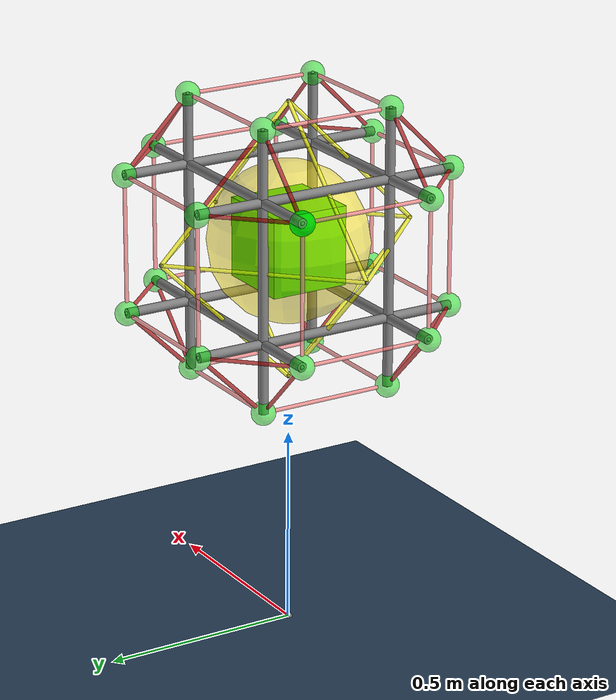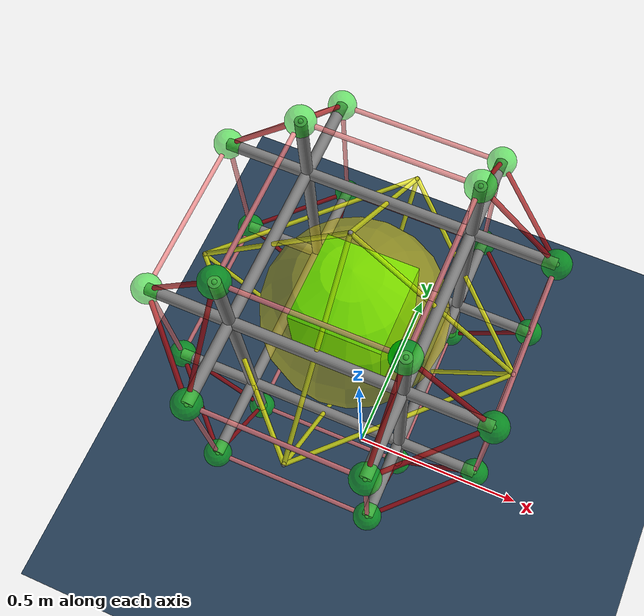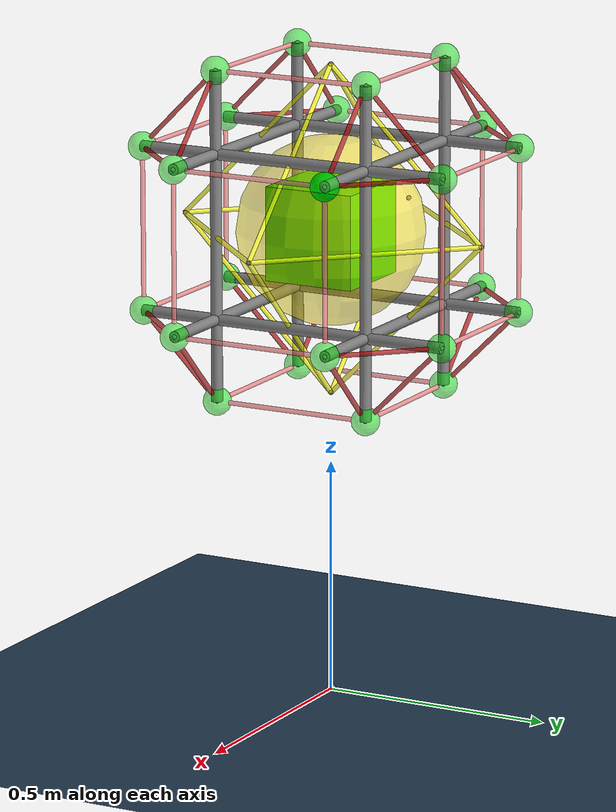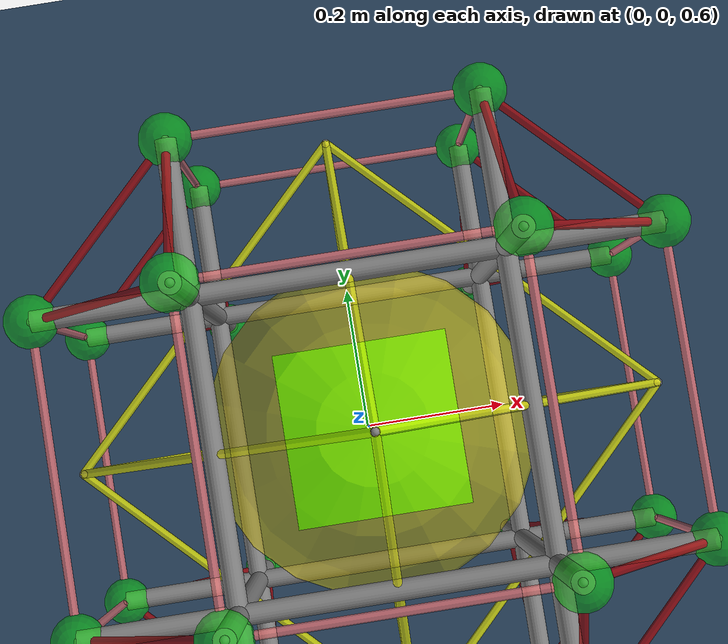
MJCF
<?xml version='1.0' encoding='utf-8'?>
<mujoco model="TT12_environment">
  <compiler autolimits="true" coordinate="local" angle="degree" inertiafromgeom="true" />
  <option timestep="1.0000000000000001e-05" gravity="0 0 -10" integrator="Euler">
    <flag override="disable" energy="enable" />
  </option>
  <visual>
    <headlight ambient="0.59999999999999998 0.59999999999999998 0.59999999999999998" diffuse="0.29999999999999999 0.29999999999999999 0.29999999999999999" specular="0.10000000000000001 0.10000000000000001 0.10000000000000001" />
  </visual>
  <default>
    <default class="/">
      <joint type="hinge" damping="0" />
      <geom type="capsule" />
      <site type="sphere" size="0.01" />
      <tendon limited="true" range="0 10" width="0.0050000000000000001" rgba="1 0 0 1" damping="10" />
    </default>
    <default class="tt_model_0/">
      <tendon limited="true" range="0 10" width="0.0050000000000000001" rgba="1 0 0 1" damping="10" />
    </default>
    <default class="tt_model_0/rod0_1/" />
    <default class="tt_model_0/rod2_3/" />
    <default class="tt_model_0/rod4_5/" />
    <default class="tt_model_0/rod6_7/" />
    <default class="tt_model_0/rod8_9/" />
    <default class="tt_model_0/rod10_11/" />
    <default class="tt_model_0/rod12_13/" />
    <default class="tt_model_0/rod14_15/" />
    <default class="tt_model_0/rod16_17/" />
    <default class="tt_model_0/rod18_19/" />
    <default class="tt_model_0/rod20_21/" />
    <default class="tt_model_0/rod22_23/" />
    <default class="tt_model_0/middle_platform/" />
  </default>
  <asset>
    <texture name="skybox" type="skybox" builtin="gradient" rgb1="0.29999999999999999 0.5 0.69999999999999996" rgb2="0 0 0" width="512" height="3072" />
    <texture name="2d" type="2d" builtin="checker" rgb1="0.20000000000000001 0.29999999999999999 0.40000000000000002" rgb2="0.10000000000000001 0.20000000000000001 0.29999999999999999" width="300" height="300" />
    <material name="grid" class="/" texture="2d" texrepeat="5 5" reflectance="0.20000000000000001" />
  </asset>
  <worldbody>
    <geom name="floor" class="/" type="plane" condim="6" priority="1" size="0 0 0.125" material="grid" friction="0.5 0.1 0.1" solref="-5773.1000000000004 -68.760000000000005" solimp="0.26900000000000002 0.070999999999999994 0.065000000000000002 0.5 2" pos="0 0 0" />
    <light name="light_-2" class="/" pos="-2 -1 3" dir="2 1 -2" />
    <light name="light_2" class="/" pos="2 -1 3" dir="-2 1 -2" />
    <site name="world_site" class="/" pos="0 0 0" />
    <site name="tt_model_0/middle_site_0_1" class="tt_model_0/" rgba="0 0 0 0" pos="0.17499999999999999 0.17499999999999999 1" />
    <body pos="0.17499999999999999 0.17499999999999999 1" name="tt_model_0/rod0_1/">
      <freejoint name="tt_model_0/rod0_1/" />
      <geom name="tt_model_0/rod0_1/geom0_1" class="tt_model_0/rod0_1/" type="cylinder" size="0.012" mass="0.022499999999999999" fromto="0 0 0.35000000000000009 0 0 -0.34999999999999998" />
      <site name="tt_model_0/rod0_1/node_0" class="tt_model_0/rod0_1/" pos="0 0 0.35000000000000009" />
      <site name="tt_model_0/rod0_1/node_1" class="tt_model_0/rod0_1/" pos="0 0 -0.34999999999999998" />
      <site name="tt_model_0/rod0_1/node_24" class="tt_model_0/rod0_1/" pos="0 0 0" />
      <geom name="tt_model_0/rod0_1/geom_edge_0" class="tt_model_0/rod0_1/" type="sphere" condim="6" size="0.029999999999999999" rgba="0 0.90000000000000002 0 0.5" mass="0.011299999999999999" pos="0 0 0.35000000000000009" />
      <geom name="tt_model_0/rod0_1/geom_edge_1" class="tt_model_0/rod0_1/" type="sphere" condim="6" size="0.029999999999999999" rgba="0 0.90000000000000002 0 0.5" mass="0.011299999999999999" pos="0 0 -0.34999999999999998" />
    </body>
    <site name="tt_model_0/middle_site_2_3" class="tt_model_0/" rgba="0 0 0 0" pos="-0.17499999999999999 0.17499999999999999 1" />
    <body pos="-0.17499999999999999 0.17499999999999999 1" name="tt_model_0/rod2_3/">
      <freejoint name="tt_model_0/rod2_3/" />
      <geom name="tt_model_0/rod2_3/geom2_3" class="tt_model_0/rod2_3/" type="cylinder" size="0.012" mass="0.022499999999999999" fromto="0 0 0.35000000000000009 0 0 -0.34999999999999998" />
      <site name="tt_model_0/rod2_3/node_2" class="tt_model_0/rod2_3/" pos="0 0 0.35000000000000009" />
      <site name="tt_model_0/rod2_3/node_3" class="tt_model_0/rod2_3/" pos="0 0 -0.34999999999999998" />
      <site name="tt_model_0/rod2_3/node_25" class="tt_model_0/rod2_3/" pos="0 0 0" />
      <geom name="tt_model_0/rod2_3/geom_edge_2" class="tt_model_0/rod2_3/" type="sphere" condim="6" size="0.029999999999999999" rgba="0 0.90000000000000002 0 0.5" mass="0.011299999999999999" pos="0 0 0.35000000000000009" />
      <geom name="tt_model_0/rod2_3/geom_edge_3" class="tt_model_0/rod2_3/" type="sphere" condim="6" size="0.029999999999999999" rgba="0 0.90000000000000002 0 0.5" mass="0.011299999999999999" pos="0 0 -0.34999999999999998" />
    </body>
    <site name="tt_model_0/middle_site_4_5" class="tt_model_0/" rgba="0 0 0 0" pos="-0.17499999999999999 -0.17499999999999999 1" />
    <body pos="-0.17499999999999999 -0.17499999999999999 1" name="tt_model_0/rod4_5/">
      <freejoint name="tt_model_0/rod4_5/" />
      <geom name="tt_model_0/rod4_5/geom4_5" class="tt_model_0/rod4_5/" type="cylinder" size="0.012" mass="0.022499999999999999" fromto="0 0 0.35000000000000009 0 0 -0.34999999999999998" />
      <site name="tt_model_0/rod4_5/node_4" class="tt_model_0/rod4_5/" pos="0 0 0.35000000000000009" />
      <site name="tt_model_0/rod4_5/node_5" class="tt_model_0/rod4_5/" pos="0 0 -0.34999999999999998" />
      <site name="tt_model_0/rod4_5/node_26" class="tt_model_0/rod4_5/" pos="0 0 0" />
      <geom name="tt_model_0/rod4_5/geom_edge_4" class="tt_model_0/rod4_5/" type="sphere" condim="6" size="0.029999999999999999" rgba="0 0.90000000000000002 0 0.5" mass="0.011299999999999999" pos="0 0 0.35000000000000009" />
      <geom name="tt_model_0/rod4_5/geom_edge_5" class="tt_model_0/rod4_5/" type="sphere" condim="6" size="0.029999999999999999" rgba="0 0.90000000000000002 0 0.5" mass="0.011299999999999999" pos="0 0 -0.34999999999999998" />
    </body>
    <site name="tt_model_0/middle_site_6_7" class="tt_model_0/" rgba="0 0 0 0" pos="0.17499999999999999 -0.17499999999999999 1" />
    <body pos="0.17499999999999999 -0.17499999999999999 1" name="tt_model_0/rod6_7/">
      <freejoint name="tt_model_0/rod6_7/" />
      <geom name="tt_model_0/rod6_7/geom6_7" class="tt_model_0/rod6_7/" type="cylinder" size="0.012" mass="0.022499999999999999" fromto="0 0 0.35000000000000009 0 0 -0.34999999999999998" />
      <site name="tt_model_0/rod6_7/node_6" class="tt_model_0/rod6_7/" pos="0 0 0.35000000000000009" />
      <site name="tt_model_0/rod6_7/node_7" class="tt_model_0/rod6_7/" pos="0 0 -0.34999999999999998" />
      <site name="tt_model_0/rod6_7/node_27" class="tt_model_0/rod6_7/" pos="0 0 0" />
      <geom name="tt_model_0/rod6_7/geom_edge_6" class="tt_model_0/rod6_7/" type="sphere" condim="6" size="0.029999999999999999" rgba="0 0.90000000000000002 0 0.5" mass="0.011299999999999999" pos="0 0 0.35000000000000009" />
      <geom name="tt_model_0/rod6_7/geom_edge_7" class="tt_model_0/rod6_7/" type="sphere" condim="6" size="0.029999999999999999" rgba="0 0.90000000000000002 0 0.5" mass="0.011299999999999999" pos="0 0 -0.34999999999999998" />
    </body>
    <site name="tt_model_0/middle_site_8_9" class="tt_model_0/" rgba="0 0 0 0" pos="0.17499999999999999 0 1.175" />
    <body pos="0.17499999999999999 0 1.175" name="tt_model_0/rod8_9/">
      <freejoint name="tt_model_0/rod8_9/" />
      <geom name="tt_model_0/rod8_9/geom8_9" class="tt_model_0/rod8_9/" type="cylinder" size="0.012" mass="0.022499999999999999" fromto="0 0.34999999999999998 0 0 -0.34999999999999998 0" />
      <site name="tt_model_0/rod8_9/node_8" class="tt_model_0/rod8_9/" pos="0 0.34999999999999998 0" />
      <site name="tt_model_0/rod8_9/node_9" class="tt_model_0/rod8_9/" pos="0 -0.34999999999999998 0" />
      <site name="tt_model_0/rod8_9/node_28" class="tt_model_0/rod8_9/" pos="0 0 0" />
      <geom name="tt_model_0/rod8_9/geom_edge_8" class="tt_model_0/rod8_9/" type="sphere" condim="6" size="0.029999999999999999" rgba="0 0.90000000000000002 0 0.5" mass="0.011299999999999999" pos="0 0.34999999999999998 0" />
      <geom name="tt_model_0/rod8_9/geom_edge_9" class="tt_model_0/rod8_9/" type="sphere" condim="6" size="0.029999999999999999" rgba="0 0.90000000000000002 0 0.5" mass="0.011299999999999999" pos="0 -0.34999999999999998 0" />
    </body>
    <site name="tt_model_0/middle_site_10_11" class="tt_model_0/" rgba="0 0 0 0" pos="0.17499999999999999 0 0.82499999999999996" />
    <body pos="0.17499999999999999 0 0.82499999999999996" name="tt_model_0/rod10_11/">
      <freejoint name="tt_model_0/rod10_11/" />
      <geom name="tt_model_0/rod10_11/geom10_11" class="tt_model_0/rod10_11/" type="cylinder" size="0.012" mass="0.022499999999999999" fromto="0 0.34999999999999998 0 0 -0.34999999999999998 0" />
      <site name="tt_model_0/rod10_11/node_10" class="tt_model_0/rod10_11/" pos="0 0.34999999999999998 0" />
      <site name="tt_model_0/rod10_11/node_11" class="tt_model_0/rod10_11/" pos="0 -0.34999999999999998 0" />
      <site name="tt_model_0/rod10_11/node_29" class="tt_model_0/rod10_11/" pos="0 0 0" />
      <geom name="tt_model_0/rod10_11/geom_edge_10" class="tt_model_0/rod10_11/" type="sphere" condim="6" size="0.029999999999999999" rgba="0 0.90000000000000002 0 0.5" mass="0.011299999999999999" pos="0 0.34999999999999998 0" />
      <geom name="tt_model_0/rod10_11/geom_edge_11" class="tt_model_0/rod10_11/" type="sphere" condim="6" size="0.029999999999999999" rgba="0 0.90000000000000002 0 0.5" mass="0.011299999999999999" pos="0 -0.34999999999999998 0" />
    </body>
    <site name="tt_model_0/middle_site_12_13" class="tt_model_0/" rgba="0 0 0 0" pos="-0.17499999999999999 0 0.82499999999999996" />
    <body pos="-0.17499999999999999 0 0.82499999999999996" name="tt_model_0/rod12_13/">
      <freejoint name="tt_model_0/rod12_13/" />
      <geom name="tt_model_0/rod12_13/geom12_13" class="tt_model_0/rod12_13/" type="cylinder" size="0.012" mass="0.022499999999999999" fromto="0 0.34999999999999998 0 0 -0.34999999999999998 0" />
      <site name="tt_model_0/rod12_13/node_12" class="tt_model_0/rod12_13/" pos="0 0.34999999999999998 0" />
      <site name="tt_model_0/rod12_13/node_13" class="tt_model_0/rod12_13/" pos="0 -0.34999999999999998 0" />
      <site name="tt_model_0/rod12_13/node_30" class="tt_model_0/rod12_13/" pos="0 0 0" />
      <geom name="tt_model_0/rod12_13/geom_edge_12" class="tt_model_0/rod12_13/" type="sphere" condim="6" size="0.029999999999999999" rgba="0 0.90000000000000002 0 0.5" mass="0.011299999999999999" pos="0 0.34999999999999998 0" />
      <geom name="tt_model_0/rod12_13/geom_edge_13" class="tt_model_0/rod12_13/" type="sphere" condim="6" size="0.029999999999999999" rgba="0 0.90000000000000002 0 0.5" mass="0.011299999999999999" pos="0 -0.34999999999999998 0" />
    </body>
    <site name="tt_model_0/middle_site_14_15" class="tt_model_0/" rgba="0 0 0 0" pos="-0.17499999999999999 0 1.175" />
    <body pos="-0.17499999999999999 0 1.175" name="tt_model_0/rod14_15/">
      <freejoint name="tt_model_0/rod14_15/" />
      <geom name="tt_model_0/rod14_15/geom14_15" class="tt_model_0/rod14_15/" type="cylinder" size="0.012" mass="0.022499999999999999" fromto="0 0.34999999999999998 0 0 -0.34999999999999998 0" />
      <site name="tt_model_0/rod14_15/node_14" class="tt_model_0/rod14_15/" pos="0 0.34999999999999998 0" />
      <site name="tt_model_0/rod14_15/node_15" class="tt_model_0/rod14_15/" pos="0 -0.34999999999999998 0" />
      <site name="tt_model_0/rod14_15/node_31" class="tt_model_0/rod14_15/" pos="0 0 0" />
      <geom name="tt_model_0/rod14_15/geom_edge_14" class="tt_model_0/rod14_15/" type="sphere" condim="6" size="0.029999999999999999" rgba="0 0.90000000000000002 0 0.5" mass="0.011299999999999999" pos="0 0.34999999999999998 0" />
      <geom name="tt_model_0/rod14_15/geom_edge_15" class="tt_model_0/rod14_15/" type="sphere" condim="6" size="0.029999999999999999" rgba="0 0.90000000000000002 0 0.5" mass="0.011299999999999999" pos="0 -0.34999999999999998 0" />
    </body>
    <site name="tt_model_0/middle_site_16_17" class="tt_model_0/" rgba="0 0 0 0" pos="0 0.17499999999999999 1.175" />
    <body pos="0 0.17499999999999999 1.175" name="tt_model_0/rod16_17/">
      <freejoint name="tt_model_0/rod16_17/" />
      <geom name="tt_model_0/rod16_17/geom16_17" class="tt_model_0/rod16_17/" type="cylinder" size="0.012" mass="0.022499999999999999" fromto="0.34999999999999998 0 0 -0.34999999999999998 0 0" />
      <site name="tt_model_0/rod16_17/node_16" class="tt_model_0/rod16_17/" pos="0.34999999999999998 0 0" />
      <site name="tt_model_0/rod16_17/node_17" class="tt_model_0/rod16_17/" pos="-0.34999999999999998 0 0" />
      <site name="tt_model_0/rod16_17/node_32" class="tt_model_0/rod16_17/" pos="0 0 0" />
      <geom name="tt_model_0/rod16_17/geom_edge_16" class="tt_model_0/rod16_17/" type="sphere" condim="6" size="0.029999999999999999" rgba="0 0.90000000000000002 0 0.5" mass="0.011299999999999999" pos="0.34999999999999998 0 0" />
      <geom name="tt_model_0/rod16_17/geom_edge_17" class="tt_model_0/rod16_17/" type="sphere" condim="6" size="0.029999999999999999" rgba="0 0.90000000000000002 0 0.5" mass="0.011299999999999999" pos="-0.34999999999999998 0 0" />
    </body>
    <site name="tt_model_0/middle_site_18_19" class="tt_model_0/" rgba="0 0 0 0" pos="0 -0.17499999999999999 1.175" />
    <body pos="0 -0.17499999999999999 1.175" name="tt_model_0/rod18_19/">
      <freejoint name="tt_model_0/rod18_19/" />
      <geom name="tt_model_0/rod18_19/geom18_19" class="tt_model_0/rod18_19/" type="cylinder" size="0.012" mass="0.022499999999999999" fromto="0.34999999999999998 0 0 -0.34999999999999998 0 0" />
      <site name="tt_model_0/rod18_19/node_18" class="tt_model_0/rod18_19/" pos="0.34999999999999998 0 0" />
      <site name="tt_model_0/rod18_19/node_19" class="tt_model_0/rod18_19/" pos="-0.34999999999999998 0 0" />
      <site name="tt_model_0/rod18_19/node_33" class="tt_model_0/rod18_19/" pos="0 0 0" />
      <geom name="tt_model_0/rod18_19/geom_edge_18" class="tt_model_0/rod18_19/" type="sphere" condim="6" size="0.029999999999999999" rgba="0 0.90000000000000002 0 0.5" mass="0.011299999999999999" pos="0.34999999999999998 0 0" />
      <geom name="tt_model_0/rod18_19/geom_edge_19" class="tt_model_0/rod18_19/" type="sphere" condim="6" size="0.029999999999999999" rgba="0 0.90000000000000002 0 0.5" mass="0.011299999999999999" pos="-0.34999999999999998 0 0" />
    </body>
    <site name="tt_model_0/middle_site_20_21" class="tt_model_0/" rgba="0 0 0 0" pos="0 -0.17499999999999999 0.82499999999999996" />
    <body pos="0 -0.17499999999999999 0.82499999999999996" name="tt_model_0/rod20_21/">
      <freejoint name="tt_model_0/rod20_21/" />
      <geom name="tt_model_0/rod20_21/geom20_21" class="tt_model_0/rod20_21/" type="cylinder" size="0.012" mass="0.022499999999999999" fromto="0.34999999999999998 0 0 -0.34999999999999998 0 0" />
      <site name="tt_model_0/rod20_21/node_20" class="tt_model_0/rod20_21/" pos="0.34999999999999998 0 0" />
      <site name="tt_model_0/rod20_21/node_21" class="tt_model_0/rod20_21/" pos="-0.34999999999999998 0 0" />
      <site name="tt_model_0/rod20_21/node_34" class="tt_model_0/rod20_21/" pos="0 0 0" />
      <geom name="tt_model_0/rod20_21/geom_edge_20" class="tt_model_0/rod20_21/" type="sphere" condim="6" size="0.029999999999999999" rgba="0 0.90000000000000002 0 0.5" mass="0.011299999999999999" pos="0.34999999999999998 0 0" />
      <geom name="tt_model_0/rod20_21/geom_edge_21" class="tt_model_0/rod20_21/" type="sphere" condim="6" size="0.029999999999999999" rgba="0 0.90000000000000002 0 0.5" mass="0.011299999999999999" pos="-0.34999999999999998 0 0" />
    </body>
    <site name="tt_model_0/middle_site_22_23" class="tt_model_0/" rgba="0 0 0 0" pos="0 0.17499999999999999 0.82499999999999996" />
    <body pos="0 0.17499999999999999 0.82499999999999996" name="tt_model_0/rod22_23/">
      <freejoint name="tt_model_0/rod22_23/" />
      <geom name="tt_model_0/rod22_23/geom22_23" class="tt_model_0/rod22_23/" type="cylinder" size="0.012" mass="0.022499999999999999" fromto="0.34999999999999998 0 0 -0.34999999999999998 0 0" />
      <site name="tt_model_0/rod22_23/node_22" class="tt_model_0/rod22_23/" pos="0.34999999999999998 0 0" />
      <site name="tt_model_0/rod22_23/node_23" class="tt_model_0/rod22_23/" pos="-0.34999999999999998 0 0" />
      <site name="tt_model_0/rod22_23/node_35" class="tt_model_0/rod22_23/" pos="0 0 0" />
      <geom name="tt_model_0/rod22_23/geom_edge_22" class="tt_model_0/rod22_23/" type="sphere" condim="6" size="0.029999999999999999" rgba="0 0.90000000000000002 0 0.5" mass="0.011299999999999999" pos="0.34999999999999998 0 0" />
      <geom name="tt_model_0/rod22_23/geom_edge_23" class="tt_model_0/rod22_23/" type="sphere" condim="6" size="0.029999999999999999" rgba="0 0.90000000000000002 0 0.5" mass="0.011299999999999999" pos="-0.34999999999999998 0 0" />
    </body>
    <site name="tt_model_0/middle_element_site" class="tt_model_0/" rgba="0 0 0 0" pos="0 0 1" />
    <body pos="0 0 1" name="tt_model_0/middle_platform/">
      <freejoint name="tt_model_0/middle_platform/" />
      <inertial pos="0 0 0" mass="0.69999999999999996" diaginertia="0.02 0.02 0.02" />
      <site name="tt_model_0/middle_platform/node_39" class="tt_model_0/middle_platform/" pos="0 0.34999999999999998 0" />
      <site name="tt_model_0/middle_platform/node_38" class="tt_model_0/middle_platform/" pos="-0.34999999999999998 0 0" />
      <site name="tt_model_0/middle_platform/node_40" class="tt_model_0/middle_platform/" pos="0 -0.34999999999999998 0" />
      <site name="tt_model_0/middle_platform/node_41" class="tt_model_0/middle_platform/" pos="0 0 0.35000000000000009" />
      <site name="tt_model_0/middle_platform/node_37" class="tt_model_0/middle_platform/" pos="0.34999999999999998 0 0" />
      <site name="tt_model_0/middle_platform/node_42" class="tt_model_0/middle_platform/" pos="0 0 -0.34999999999999998" />
      <site name="tt_model_0/middle_platform/outside_site" class="tt_model_0/middle_platform/" rgba="1 0.90000000000000002 0 0.5" size="0.20000000000000001" pos="0 0 0" />
      <body name="tt_model_0/middle_platform/inside_ball" pos="0 0 0">
        <inertial pos="0 0 0" mass="6.5999999999999996" diaginertia="0.12 0.12 0.12" />
        <joint name="tt_model_0/middle_platform/x_control" class="tt_model_0/middle_platform/" type="hinge" axis="1 0 0" />
        <joint name="tt_model_0/middle_platform/y_control" class="tt_model_0/middle_platform/" type="hinge" axis="0 1 0" />
        <joint name="tt_model_0/middle_platform/z_control" class="tt_model_0/middle_platform/" type="hinge" axis="0 0 1" />
        <site name="tt_model_0/middle_platform/inside_site" class="tt_model_0/middle_platform/" type="box" rgba="0 0.90000000000000002 0 1" size="0.10000000000000001 0.10000000000000001 0.10000000000000001" pos="0 0 0" />
      </body>
    </body>
  </worldbody>
  <contact>
    <exclude name="tt_model_0/exclude_rod0_1_rod2_3" body1="tt_model_0/rod0_1/" body2="tt_model_0/rod2_3/" />
    <exclude name="tt_model_0/exclude_rod0_1_rod4_5" body1="tt_model_0/rod0_1/" body2="tt_model_0/rod4_5/" />
    <exclude name="tt_model_0/exclude_rod0_1_rod6_7" body1="tt_model_0/rod0_1/" body2="tt_model_0/rod6_7/" />
    <exclude name="tt_model_0/exclude_rod0_1_rod8_9" body1="tt_model_0/rod0_1/" body2="tt_model_0/rod8_9/" />
    <exclude name="tt_model_0/exclude_rod0_1_rod10_11" body1="tt_model_0/rod0_1/" body2="tt_model_0/rod10_11/" />
    <exclude name="tt_model_0/exclude_rod0_1_rod12_13" body1="tt_model_0/rod0_1/" body2="tt_model_0/rod12_13/" />
    <exclude name="tt_model_0/exclude_rod0_1_rod14_15" body1="tt_model_0/rod0_1/" body2="tt_model_0/rod14_15/" />
    <exclude name="tt_model_0/exclude_rod0_1_rod16_17" body1="tt_model_0/rod0_1/" body2="tt_model_0/rod16_17/" />
    <exclude name="tt_model_0/exclude_rod0_1_rod18_19" body1="tt_model_0/rod0_1/" body2="tt_model_0/rod18_19/" />
    <exclude name="tt_model_0/exclude_rod0_1_rod20_21" body1="tt_model_0/rod0_1/" body2="tt_model_0/rod20_21/" />
    <exclude name="tt_model_0/exclude_rod0_1_rod22_23" body1="tt_model_0/rod0_1/" body2="tt_model_0/rod22_23/" />
    <exclude name="tt_model_0/exclude_rod2_3_rod4_5" body1="tt_model_0/rod2_3/" body2="tt_model_0/rod4_5/" />
    <exclude name="tt_model_0/exclude_rod2_3_rod6_7" body1="tt_model_0/rod2_3/" body2="tt_model_0/rod6_7/" />
    <exclude name="tt_model_0/exclude_rod2_3_rod8_9" body1="tt_model_0/rod2_3/" body2="tt_model_0/rod8_9/" />
    <exclude name="tt_model_0/exclude_rod2_3_rod10_11" body1="tt_model_0/rod2_3/" body2="tt_model_0/rod10_11/" />
    <exclude name="tt_model_0/exclude_rod2_3_rod12_13" body1="tt_model_0/rod2_3/" body2="tt_model_0/rod12_13/" />
    <exclude name="tt_model_0/exclude_rod2_3_rod14_15" body1="tt_model_0/rod2_3/" body2="tt_model_0/rod14_15/" />
    <exclude name="tt_model_0/exclude_rod2_3_rod16_17" body1="tt_model_0/rod2_3/" body2="tt_model_0/rod16_17/" />
    <exclude name="tt_model_0/exclude_rod2_3_rod18_19" body1="tt_model_0/rod2_3/" body2="tt_model_0/rod18_19/" />
    <exclude name="tt_model_0/exclude_rod2_3_rod20_21" body1="tt_model_0/rod2_3/" body2="tt_model_0/rod20_21/" />
    <exclude name="tt_model_0/exclude_rod2_3_rod22_23" body1="tt_model_0/rod2_3/" body2="tt_model_0/rod22_23/" />
    <exclude name="tt_model_0/exclude_rod4_5_rod6_7" body1="tt_model_0/rod4_5/" body2="tt_model_0/rod6_7/" />
    <exclude name="tt_model_0/exclude_rod4_5_rod8_9" body1="tt_model_0/rod4_5/" body2="tt_model_0/rod8_9/" />
    <exclude name="tt_model_0/exclude_rod4_5_rod10_11" body1="tt_model_0/rod4_5/" body2="tt_model_0/rod10_11/" />
    <exclude name="tt_model_0/exclude_rod4_5_rod12_13" body1="tt_model_0/rod4_5/" body2="tt_model_0/rod12_13/" />
    <exclude name="tt_model_0/exclude_rod4_5_rod14_15" body1="tt_model_0/rod4_5/" body2="tt_model_0/rod14_15/" />
    <exclude name="tt_model_0/exclude_rod4_5_rod16_17" body1="tt_model_0/rod4_5/" body2="tt_model_0/rod16_17/" />
    <exclude name="tt_model_0/exclude_rod4_5_rod18_19" body1="tt_model_0/rod4_5/" body2="tt_model_0/rod18_19/" />
    <exclude name="tt_model_0/exclude_rod4_5_rod20_21" body1="tt_model_0/rod4_5/" body2="tt_model_0/rod20_21/" />
    <exclude name="tt_model_0/exclude_rod4_5_rod22_23" body1="tt_model_0/rod4_5/" body2="tt_model_0/rod22_23/" />
    <exclude name="tt_model_0/exclude_rod6_7_rod8_9" body1="tt_model_0/rod6_7/" body2="tt_model_0/rod8_9/" />
    <exclude name="tt_model_0/exclude_rod6_7_rod10_11" body1="tt_model_0/rod6_7/" body2="tt_model_0/rod10_11/" />
    <exclude name="tt_model_0/exclude_rod6_7_rod12_13" body1="tt_model_0/rod6_7/" body2="tt_model_0/rod12_13/" />
    <exclude name="tt_model_0/exclude_rod6_7_rod14_15" body1="tt_model_0/rod6_7/" body2="tt_model_0/rod14_15/" />
    <exclude name="tt_model_0/exclude_rod6_7_rod16_17" body1="tt_model_0/rod6_7/" body2="tt_model_0/rod16_17/" />
    <exclude name="tt_model_0/exclude_rod6_7_rod18_19" body1="tt_model_0/rod6_7/" body2="tt_model_0/rod18_19/" />
    <exclude name="tt_model_0/exclude_rod6_7_rod20_21" body1="tt_model_0/rod6_7/" body2="tt_model_0/rod20_21/" />
    <exclude name="tt_model_0/exclude_rod6_7_rod22_23" body1="tt_model_0/rod6_7/" body2="tt_model_0/rod22_23/" />
    <exclude name="tt_model_0/exclude_rod8_9_rod10_11" body1="tt_model_0/rod8_9/" body2="tt_model_0/rod10_11/" />
    <exclude name="tt_model_0/exclude_rod8_9_rod12_13" body1="tt_model_0/rod8_9/" body2="tt_model_0/rod12_13/" />
    <exclude name="tt_model_0/exclude_rod8_9_rod14_15" body1="tt_model_0/rod8_9/" body2="tt_model_0/rod14_15/" />
    <exclude name="tt_model_0/exclude_rod8_9_rod16_17" body1="tt_model_0/rod8_9/" body2="tt_model_0/rod16_17/" />
    <exclude name="tt_model_0/exclude_rod8_9_rod18_19" body1="tt_model_0/rod8_9/" body2="tt_model_0/rod18_19/" />
    <exclude name="tt_model_0/exclude_rod8_9_rod20_21" body1="tt_model_0/rod8_9/" body2="tt_model_0/rod20_21/" />
    <exclude name="tt_model_0/exclude_rod8_9_rod22_23" body1="tt_model_0/rod8_9/" body2="tt_model_0/rod22_23/" />
    <exclude name="tt_model_0/exclude_rod10_11_rod12_13" body1="tt_model_0/rod10_11/" body2="tt_model_0/rod12_13/" />
    <exclude name="tt_model_0/exclude_rod10_11_rod14_15" body1="tt_model_0/rod10_11/" body2="tt_model_0/rod14_15/" />
    <exclude name="tt_model_0/exclude_rod10_11_rod16_17" body1="tt_model_0/rod10_11/" body2="tt_model_0/rod16_17/" />
    <exclude name="tt_model_0/exclude_rod10_11_rod18_19" body1="tt_model_0/rod10_11/" body2="tt_model_0/rod18_19/" />
    <exclude name="tt_model_0/exclude_rod10_11_rod20_21" body1="tt_model_0/rod10_11/" body2="tt_model_0/rod20_21/" />
    <exclude name="tt_model_0/exclude_rod10_11_rod22_23" body1="tt_model_0/rod10_11/" body2="tt_model_0/rod22_23/" />
    <exclude name="tt_model_0/exclude_rod12_13_rod14_15" body1="tt_model_0/rod12_13/" body2="tt_model_0/rod14_15/" />
    <exclude name="tt_model_0/exclude_rod12_13_rod16_17" body1="tt_model_0/rod12_13/" body2="tt_model_0/rod16_17/" />
    <exclude name="tt_model_0/exclude_rod12_13_rod18_19" body1="tt_model_0/rod12_13/" body2="tt_model_0/rod18_19/" />
    <exclude name="tt_model_0/exclude_rod12_13_rod20_21" body1="tt_model_0/rod12_13/" body2="tt_model_0/rod20_21/" />
    <exclude name="tt_model_0/exclude_rod12_13_rod22_23" body1="tt_model_0/rod12_13/" body2="tt_model_0/rod22_23/" />
    <exclude name="tt_model_0/exclude_rod14_15_rod16_17" body1="tt_model_0/rod14_15/" body2="tt_model_0/rod16_17/" />
    <exclude name="tt_model_0/exclude_rod14_15_rod18_19" body1="tt_model_0/rod14_15/" body2="tt_model_0/rod18_19/" />
    <exclude name="tt_model_0/exclude_rod14_15_rod20_21" body1="tt_model_0/rod14_15/" body2="tt_model_0/rod20_21/" />
    <exclude name="tt_model_0/exclude_rod14_15_rod22_23" body1="tt_model_0/rod14_15/" body2="tt_model_0/rod22_23/" />
    <exclude name="tt_model_0/exclude_rod16_17_rod18_19" body1="tt_model_0/rod16_17/" body2="tt_model_0/rod18_19/" />
    <exclude name="tt_model_0/exclude_rod16_17_rod20_21" body1="tt_model_0/rod16_17/" body2="tt_model_0/rod20_21/" />
    <exclude name="tt_model_0/exclude_rod16_17_rod22_23" body1="tt_model_0/rod16_17/" body2="tt_model_0/rod22_23/" />
    <exclude name="tt_model_0/exclude_rod18_19_rod20_21" body1="tt_model_0/rod18_19/" body2="tt_model_0/rod20_21/" />
    <exclude name="tt_model_0/exclude_rod18_19_rod22_23" body1="tt_model_0/rod18_19/" body2="tt_model_0/rod22_23/" />
    <exclude name="tt_model_0/exclude_rod20_21_rod22_23" body1="tt_model_0/rod20_21/" body2="tt_model_0/rod22_23/" />
  </contact>
  <tendon>
    <spatial name="tt_model_0/td0_2" class="tt_model_0/" rgba="1 0.5 0.5 0.69999999999999996" springlength="0.22" stiffness="771">
      <site site="tt_model_0/rod0_1/node_0" />
      <site site="tt_model_0/rod2_3/node_2" />
    </spatial>
    <spatial name="tt_model_0/td2_4" class="tt_model_0/" rgba="1 0.5 0.5 0.69999999999999996" springlength="0.22" stiffness="771">
      <site site="tt_model_0/rod2_3/node_2" />
      <site site="tt_model_0/rod4_5/node_4" />
    </spatial>
    <spatial name="tt_model_0/td4_6" class="tt_model_0/" rgba="1 0.5 0.5 0.69999999999999996" springlength="0.22" stiffness="771">
      <site site="tt_model_0/rod4_5/node_4" />
      <site site="tt_model_0/rod6_7/node_6" />
    </spatial>
    <spatial name="tt_model_0/td6_0" class="tt_model_0/" rgba="1 0.5 0.5 0.69999999999999996" springlength="0.22" stiffness="771">
      <site site="tt_model_0/rod6_7/node_6" />
      <site site="tt_model_0/rod0_1/node_0" />
    </spatial>
    <spatial name="tt_model_0/td1_3" class="tt_model_0/" rgba="1 0.5 0.5 0.69999999999999996" springlength="0.22" stiffness="771">
      <site site="tt_model_0/rod0_1/node_1" />
      <site site="tt_model_0/rod2_3/node_3" />
    </spatial>
    <spatial name="tt_model_0/td3_5" class="tt_model_0/" rgba="1 0.5 0.5 0.69999999999999996" springlength="0.22" stiffness="771">
      <site site="tt_model_0/rod2_3/node_3" />
      <site site="tt_model_0/rod4_5/node_5" />
    </spatial>
    <spatial name="tt_model_0/td5_7" class="tt_model_0/" rgba="1 0.5 0.5 0.69999999999999996" springlength="0.22" stiffness="771">
      <site site="tt_model_0/rod4_5/node_5" />
      <site site="tt_model_0/rod6_7/node_7" />
    </spatial>
    <spatial name="tt_model_0/td7_1" class="tt_model_0/" rgba="1 0.5 0.5 0.69999999999999996" springlength="0.22" stiffness="771">
      <site site="tt_model_0/rod6_7/node_7" />
      <site site="tt_model_0/rod0_1/node_1" />
    </spatial>
    <spatial name="tt_model_0/td8_10" class="tt_model_0/" rgba="1 0.5 0.5 0.69999999999999996" springlength="0.22" stiffness="771">
      <site site="tt_model_0/rod8_9/node_8" />
      <site site="tt_model_0/rod10_11/node_10" />
    </spatial>
    <spatial name="tt_model_0/td10_12" class="tt_model_0/" rgba="1 0.5 0.5 0.69999999999999996" springlength="0.22" stiffness="771">
      <site site="tt_model_0/rod10_11/node_10" />
      <site site="tt_model_0/rod12_13/node_12" />
    </spatial>
    <spatial name="tt_model_0/td12_14" class="tt_model_0/" rgba="1 0.5 0.5 0.69999999999999996" springlength="0.22" stiffness="771">
      <site site="tt_model_0/rod12_13/node_12" />
      <site site="tt_model_0/rod14_15/node_14" />
    </spatial>
    <spatial name="tt_model_0/td14_8" class="tt_model_0/" rgba="1 0.5 0.5 0.69999999999999996" springlength="0.22" stiffness="771">
      <site site="tt_model_0/rod14_15/node_14" />
      <site site="tt_model_0/rod8_9/node_8" />
    </spatial>
    <spatial name="tt_model_0/td9_11" class="tt_model_0/" rgba="1 0.5 0.5 0.69999999999999996" springlength="0.22" stiffness="771">
      <site site="tt_model_0/rod8_9/node_9" />
      <site site="tt_model_0/rod10_11/node_11" />
    </spatial>
    <spatial name="tt_model_0/td11_13" class="tt_model_0/" rgba="1 0.5 0.5 0.69999999999999996" springlength="0.22" stiffness="771">
      <site site="tt_model_0/rod10_11/node_11" />
      <site site="tt_model_0/rod12_13/node_13" />
    </spatial>
    <spatial name="tt_model_0/td13_15" class="tt_model_0/" rgba="1 0.5 0.5 0.69999999999999996" springlength="0.22" stiffness="771">
      <site site="tt_model_0/rod12_13/node_13" />
      <site site="tt_model_0/rod14_15/node_15" />
    </spatial>
    <spatial name="tt_model_0/td15_9" class="tt_model_0/" rgba="1 0.5 0.5 0.69999999999999996" springlength="0.22" stiffness="771">
      <site site="tt_model_0/rod14_15/node_15" />
      <site site="tt_model_0/rod8_9/node_9" />
    </spatial>
    <spatial name="tt_model_0/td16_18" class="tt_model_0/" rgba="1 0.5 0.5 0.69999999999999996" springlength="0.22" stiffness="771">
      <site site="tt_model_0/rod16_17/node_16" />
      <site site="tt_model_0/rod18_19/node_18" />
    </spatial>
    <spatial name="tt_model_0/td18_20" class="tt_model_0/" rgba="1 0.5 0.5 0.69999999999999996" springlength="0.22" stiffness="771">
      <site site="tt_model_0/rod18_19/node_18" />
      <site site="tt_model_0/rod20_21/node_20" />
    </spatial>
    <spatial name="tt_model_0/td20_22" class="tt_model_0/" rgba="1 0.5 0.5 0.69999999999999996" springlength="0.22" stiffness="771">
      <site site="tt_model_0/rod20_21/node_20" />
      <site site="tt_model_0/rod22_23/node_22" />
    </spatial>
    <spatial name="tt_model_0/td22_16" class="tt_model_0/" rgba="1 0.5 0.5 0.69999999999999996" springlength="0.22" stiffness="771">
      <site site="tt_model_0/rod22_23/node_22" />
      <site site="tt_model_0/rod16_17/node_16" />
    </spatial>
    <spatial name="tt_model_0/td17_19" class="tt_model_0/" rgba="1 0.5 0.5 0.69999999999999996" springlength="0.22" stiffness="771">
      <site site="tt_model_0/rod16_17/node_17" />
      <site site="tt_model_0/rod18_19/node_19" />
    </spatial>
    <spatial name="tt_model_0/td19_21" class="tt_model_0/" rgba="1 0.5 0.5 0.69999999999999996" springlength="0.22" stiffness="771">
      <site site="tt_model_0/rod18_19/node_19" />
      <site site="tt_model_0/rod20_21/node_21" />
    </spatial>
    <spatial name="tt_model_0/td21_23" class="tt_model_0/" rgba="1 0.5 0.5 0.69999999999999996" springlength="0.22" stiffness="771">
      <site site="tt_model_0/rod20_21/node_21" />
      <site site="tt_model_0/rod22_23/node_23" />
    </spatial>
    <spatial name="tt_model_0/td23_17" class="tt_model_0/" rgba="1 0.5 0.5 0.69999999999999996" springlength="0.22" stiffness="771">
      <site site="tt_model_0/rod22_23/node_23" />
      <site site="tt_model_0/rod16_17/node_17" />
    </spatial>
    <spatial name="tt_model_0/td0_16" class="tt_model_0/" rgba="0.69999999999999996 0 0 0.69999999999999996" springlength="0.10000000000000001" stiffness="2000">
      <site site="tt_model_0/rod0_1/node_0" />
      <site site="tt_model_0/rod16_17/node_16" />
    </spatial>
    <spatial name="tt_model_0/td2_17" class="tt_model_0/" rgba="0.69999999999999996 0 0 0.69999999999999996" springlength="0.10000000000000001" stiffness="2000">
      <site site="tt_model_0/rod2_3/node_2" />
      <site site="tt_model_0/rod16_17/node_17" />
    </spatial>
    <spatial name="tt_model_0/td4_19" class="tt_model_0/" rgba="0.69999999999999996 0 0 0.69999999999999996" springlength="0.10000000000000001" stiffness="2000">
      <site site="tt_model_0/rod4_5/node_4" />
      <site site="tt_model_0/rod18_19/node_19" />
    </spatial>
    <spatial name="tt_model_0/td6_18" class="tt_model_0/" rgba="0.69999999999999996 0 0 0.69999999999999996" springlength="0.10000000000000001" stiffness="2000">
      <site site="tt_model_0/rod6_7/node_6" />
      <site site="tt_model_0/rod18_19/node_18" />
    </spatial>
    <spatial name="tt_model_0/td1_22" class="tt_model_0/" rgba="0.69999999999999996 0 0 0.69999999999999996" springlength="0.10000000000000001" stiffness="2000">
      <site site="tt_model_0/rod0_1/node_1" />
      <site site="tt_model_0/rod22_23/node_22" />
    </spatial>
    <spatial name="tt_model_0/td3_23" class="tt_model_0/" rgba="0.69999999999999996 0 0 0.69999999999999996" springlength="0.10000000000000001" stiffness="2000">
      <site site="tt_model_0/rod2_3/node_3" />
      <site site="tt_model_0/rod22_23/node_23" />
    </spatial>
    <spatial name="tt_model_0/td5_21" class="tt_model_0/" rgba="0.69999999999999996 0 0 0.69999999999999996" springlength="0.10000000000000001" stiffness="2000">
      <site site="tt_model_0/rod4_5/node_5" />
      <site site="tt_model_0/rod20_21/node_21" />
    </spatial>
    <spatial name="tt_model_0/td7_20" class="tt_model_0/" rgba="0.69999999999999996 0 0 0.69999999999999996" springlength="0.10000000000000001" stiffness="2000">
      <site site="tt_model_0/rod6_7/node_7" />
      <site site="tt_model_0/rod20_21/node_20" />
    </spatial>
    <spatial name="tt_model_0/td8_0" class="tt_model_0/" rgba="0.69999999999999996 0 0 0.69999999999999996" springlength="0.10000000000000001" stiffness="2000">
      <site site="tt_model_0/rod8_9/node_8" />
      <site site="tt_model_0/rod0_1/node_0" />
    </spatial>
    <spatial name="tt_model_0/td8_16" class="tt_model_0/" rgba="0.69999999999999996 0 0 0.69999999999999996" springlength="0.10000000000000001" stiffness="2000">
      <site site="tt_model_0/rod8_9/node_8" />
      <site site="tt_model_0/rod16_17/node_16" />
    </spatial>
    <spatial name="tt_model_0/td9_6" class="tt_model_0/" rgba="0.69999999999999996 0 0 0.69999999999999996" springlength="0.10000000000000001" stiffness="2000">
      <site site="tt_model_0/rod8_9/node_9" />
      <site site="tt_model_0/rod6_7/node_6" />
    </spatial>
    <spatial name="tt_model_0/td9_18" class="tt_model_0/" rgba="0.69999999999999996 0 0 0.69999999999999996" springlength="0.10000000000000001" stiffness="2000">
      <site site="tt_model_0/rod8_9/node_9" />
      <site site="tt_model_0/rod18_19/node_18" />
    </spatial>
    <spatial name="tt_model_0/td10_1" class="tt_model_0/" rgba="0.69999999999999996 0 0 0.69999999999999996" springlength="0.10000000000000001" stiffness="2000">
      <site site="tt_model_0/rod10_11/node_10" />
      <site site="tt_model_0/rod0_1/node_1" />
    </spatial>
    <spatial name="tt_model_0/td10_22" class="tt_model_0/" rgba="0.69999999999999996 0 0 0.69999999999999996" springlength="0.10000000000000001" stiffness="2000">
      <site site="tt_model_0/rod10_11/node_10" />
      <site site="tt_model_0/rod22_23/node_22" />
    </spatial>
    <spatial name="tt_model_0/td11_7" class="tt_model_0/" rgba="0.69999999999999996 0 0 0.69999999999999996" springlength="0.10000000000000001" stiffness="2000">
      <site site="tt_model_0/rod10_11/node_11" />
      <site site="tt_model_0/rod6_7/node_7" />
    </spatial>
    <spatial name="tt_model_0/td11_20" class="tt_model_0/" rgba="0.69999999999999996 0 0 0.69999999999999996" springlength="0.10000000000000001" stiffness="2000">
      <site site="tt_model_0/rod10_11/node_11" />
      <site site="tt_model_0/rod20_21/node_20" />
    </spatial>
    <spatial name="tt_model_0/td12_3" class="tt_model_0/" rgba="0.69999999999999996 0 0 0.69999999999999996" springlength="0.10000000000000001" stiffness="2000">
      <site site="tt_model_0/rod12_13/node_12" />
      <site site="tt_model_0/rod2_3/node_3" />
    </spatial>
    <spatial name="tt_model_0/td12_23" class="tt_model_0/" rgba="0.69999999999999996 0 0 0.69999999999999996" springlength="0.10000000000000001" stiffness="2000">
      <site site="tt_model_0/rod12_13/node_12" />
      <site site="tt_model_0/rod22_23/node_23" />
    </spatial>
    <spatial name="tt_model_0/td13_5" class="tt_model_0/" rgba="0.69999999999999996 0 0 0.69999999999999996" springlength="0.10000000000000001" stiffness="2000">
      <site site="tt_model_0/rod12_13/node_13" />
      <site site="tt_model_0/rod4_5/node_5" />
    </spatial>
    <spatial name="tt_model_0/td13_21" class="tt_model_0/" rgba="0.69999999999999996 0 0 0.69999999999999996" springlength="0.10000000000000001" stiffness="2000">
      <site site="tt_model_0/rod12_13/node_13" />
      <site site="tt_model_0/rod20_21/node_21" />
    </spatial>
    <spatial name="tt_model_0/td14_2" class="tt_model_0/" rgba="0.69999999999999996 0 0 0.69999999999999996" springlength="0.10000000000000001" stiffness="2000">
      <site site="tt_model_0/rod14_15/node_14" />
      <site site="tt_model_0/rod2_3/node_2" />
    </spatial>
    <spatial name="tt_model_0/td14_17" class="tt_model_0/" rgba="0.69999999999999996 0 0 0.69999999999999996" springlength="0.10000000000000001" stiffness="2000">
      <site site="tt_model_0/rod14_15/node_14" />
      <site site="tt_model_0/rod16_17/node_17" />
    </spatial>
    <spatial name="tt_model_0/td15_4" class="tt_model_0/" rgba="0.69999999999999996 0 0 0.69999999999999996" springlength="0.10000000000000001" stiffness="2000">
      <site site="tt_model_0/rod14_15/node_15" />
      <site site="tt_model_0/rod4_5/node_4" />
    </spatial>
    <spatial name="tt_model_0/td15_19" class="tt_model_0/" rgba="0.69999999999999996 0 0 0.69999999999999996" springlength="0.10000000000000001" stiffness="2000">
      <site site="tt_model_0/rod14_15/node_15" />
      <site site="tt_model_0/rod18_19/node_19" />
    </spatial>
    <spatial name="tt_model_0/td24_37" class="tt_model_0/" rgba="1 1 0 0.69999999999999996" springlength="0.17000000000000001" stiffness="67000">
      <site site="tt_model_0/rod0_1/node_24" />
      <site site="tt_model_0/middle_platform/node_37" />
    </spatial>
    <spatial name="tt_model_0/td28_37" class="tt_model_0/" rgba="1 1 0 0.69999999999999996" springlength="0.17000000000000001" stiffness="67000">
      <site site="tt_model_0/rod8_9/node_28" />
      <site site="tt_model_0/middle_platform/node_37" />
    </spatial>
    <spatial name="tt_model_0/td27_37" class="tt_model_0/" rgba="1 1 0 0.69999999999999996" springlength="0.17000000000000001" stiffness="67000">
      <site site="tt_model_0/rod6_7/node_27" />
      <site site="tt_model_0/middle_platform/node_37" />
    </spatial>
    <spatial name="tt_model_0/td29_37" class="tt_model_0/" rgba="1 1 0 0.69999999999999996" springlength="0.17000000000000001" stiffness="67000">
      <site site="tt_model_0/rod10_11/node_29" />
      <site site="tt_model_0/middle_platform/node_37" />
    </spatial>
    <spatial name="tt_model_0/td25_38" class="tt_model_0/" rgba="1 1 0 0.69999999999999996" springlength="0.17000000000000001" stiffness="67000">
      <site site="tt_model_0/rod2_3/node_25" />
      <site site="tt_model_0/middle_platform/node_38" />
    </spatial>
    <spatial name="tt_model_0/td31_38" class="tt_model_0/" rgba="1 1 0 0.69999999999999996" springlength="0.17000000000000001" stiffness="67000">
      <site site="tt_model_0/rod14_15/node_31" />
      <site site="tt_model_0/middle_platform/node_38" />
    </spatial>
    <spatial name="tt_model_0/td26_38" class="tt_model_0/" rgba="1 1 0 0.69999999999999996" springlength="0.17000000000000001" stiffness="67000">
      <site site="tt_model_0/rod4_5/node_26" />
      <site site="tt_model_0/middle_platform/node_38" />
    </spatial>
    <spatial name="tt_model_0/td30_38" class="tt_model_0/" rgba="1 1 0 0.69999999999999996" springlength="0.17000000000000001" stiffness="67000">
      <site site="tt_model_0/rod12_13/node_30" />
      <site site="tt_model_0/middle_platform/node_38" />
    </spatial>
    <spatial name="tt_model_0/td35_39" class="tt_model_0/" rgba="1 1 0 0.69999999999999996" springlength="0.17000000000000001" stiffness="67000">
      <site site="tt_model_0/rod22_23/node_35" />
      <site site="tt_model_0/middle_platform/node_39" />
    </spatial>
    <spatial name="tt_model_0/td25_39" class="tt_model_0/" rgba="1 1 0 0.69999999999999996" springlength="0.17000000000000001" stiffness="67000">
      <site site="tt_model_0/rod2_3/node_25" />
      <site site="tt_model_0/middle_platform/node_39" />
    </spatial>
    <spatial name="tt_model_0/td32_39" class="tt_model_0/" rgba="1 1 0 0.69999999999999996" springlength="0.17000000000000001" stiffness="67000">
      <site site="tt_model_0/rod16_17/node_32" />
      <site site="tt_model_0/middle_platform/node_39" />
    </spatial>
    <spatial name="tt_model_0/td24_39" class="tt_model_0/" rgba="1 1 0 0.69999999999999996" springlength="0.17000000000000001" stiffness="67000">
      <site site="tt_model_0/rod0_1/node_24" />
      <site site="tt_model_0/middle_platform/node_39" />
    </spatial>
    <spatial name="tt_model_0/td34_40" class="tt_model_0/" rgba="1 1 0 0.69999999999999996" springlength="0.17000000000000001" stiffness="67000">
      <site site="tt_model_0/rod20_21/node_34" />
      <site site="tt_model_0/middle_platform/node_40" />
    </spatial>
    <spatial name="tt_model_0/td26_40" class="tt_model_0/" rgba="1 1 0 0.69999999999999996" springlength="0.17000000000000001" stiffness="67000">
      <site site="tt_model_0/rod4_5/node_26" />
      <site site="tt_model_0/middle_platform/node_40" />
    </spatial>
    <spatial name="tt_model_0/td33_40" class="tt_model_0/" rgba="1 1 0 0.69999999999999996" springlength="0.17000000000000001" stiffness="67000">
      <site site="tt_model_0/rod18_19/node_33" />
      <site site="tt_model_0/middle_platform/node_40" />
    </spatial>
    <spatial name="tt_model_0/td27_40" class="tt_model_0/" rgba="1 1 0 0.69999999999999996" springlength="0.17000000000000001" stiffness="67000">
      <site site="tt_model_0/rod6_7/node_27" />
      <site site="tt_model_0/middle_platform/node_40" />
    </spatial>
    <spatial name="tt_model_0/td32_41" class="tt_model_0/" rgba="1 1 0 0.69999999999999996" springlength="0.17000000000000001" stiffness="67000">
      <site site="tt_model_0/rod16_17/node_32" />
      <site site="tt_model_0/middle_platform/node_41" />
    </spatial>
    <spatial name="tt_model_0/td31_41" class="tt_model_0/" rgba="1 1 0 0.69999999999999996" springlength="0.17000000000000001" stiffness="67000">
      <site site="tt_model_0/rod14_15/node_31" />
      <site site="tt_model_0/middle_platform/node_41" />
    </spatial>
    <spatial name="tt_model_0/td33_41" class="tt_model_0/" rgba="1 1 0 0.69999999999999996" springlength="0.17000000000000001" stiffness="67000">
      <site site="tt_model_0/rod18_19/node_33" />
      <site site="tt_model_0/middle_platform/node_41" />
    </spatial>
    <spatial name="tt_model_0/td28_41" class="tt_model_0/" rgba="1 1 0 0.69999999999999996" springlength="0.17000000000000001" stiffness="67000">
      <site site="tt_model_0/rod8_9/node_28" />
      <site site="tt_model_0/middle_platform/node_41" />
    </spatial>
    <spatial name="tt_model_0/td35_42" class="tt_model_0/" rgba="1 1 0 0.69999999999999996" springlength="0.17000000000000001" stiffness="67000">
      <site site="tt_model_0/rod22_23/node_35" />
      <site site="tt_model_0/middle_platform/node_42" />
    </spatial>
    <spatial name="tt_model_0/td30_42" class="tt_model_0/" rgba="1 1 0 0.69999999999999996" springlength="0.17000000000000001" stiffness="67000">
      <site site="tt_model_0/rod12_13/node_30" />
      <site site="tt_model_0/middle_platform/node_42" />
    </spatial>
    <spatial name="tt_model_0/td29_42" class="tt_model_0/" rgba="1 1 0 0.69999999999999996" springlength="0.17000000000000001" stiffness="67000">
      <site site="tt_model_0/rod10_11/node_29" />
      <site site="tt_model_0/middle_platform/node_42" />
    </spatial>
    <spatial name="tt_model_0/td34_42" class="tt_model_0/" rgba="1 1 0 0.69999999999999996" springlength="0.17000000000000001" stiffness="67000">
      <site site="tt_model_0/rod20_21/node_34" />
      <site site="tt_model_0/middle_platform/node_42" />
    </spatial>
  </tendon>
  <actuator>
    <motor name="tt_model_0/torque_x_ctrl" class="tt_model_0/" ctrllimited="true" ctrlrange="-100 100" gear="1" joint="tt_model_0/middle_platform/x_control" />
    <velocity name="tt_model_0/velocity_x_ctrl" class="tt_model_0/" ctrlrange="-100 100" joint="tt_model_0/middle_platform/x_control" kv="0" />
  </actuator>
  <sensor>
    <framepos name="tt_model_0/pos_outside_ball" objtype="body" objname="tt_model_0/middle_platform/" reftype="site" refname="world_site" />
    <framepos name="tt_model_0/pos_inside_ball" objtype="body" objname="tt_model_0/middle_platform/inside_ball" reftype="site" refname="world_site" />
    <frameangvel name="tt_model_0/angvel_outside_ball" objtype="body" objname="tt_model_0/middle_platform/" reftype="site" refname="world_site" />
    <frameangvel name="tt_model_0/angvel_inside_ball" objtype="body" objname="tt_model_0/middle_platform/inside_ball" reftype="site" refname="world_site" />
    <frameangacc name="tt_model_0/angacc_outside_ball" objtype="body" objname="tt_model_0/middle_platform/" />
    <frameangacc name="tt_model_0/angacc_inside_ball" objtype="body" objname="tt_model_0/middle_platform/inside_ball" />
    <accelerometer name="tt_model_0//unnamed_sensor_6" site="tt_model_0/middle_platform/inside_site" />
  </sensor>
  <keyframe>
    <key name="tt_model_0/initial_state" time="0" qpos="1.79416233e-01  1.79416233e-01  3.79760347e-01  9.99999994e-01
 -7.70452083e-05  7.70452083e-05 -5.99016506e-12 -1.79416233e-01
  1.79416233e-01  3.79760347e-01  9.99999994e-01 -7.70452083e-05
 -7.70452083e-05  1.19963061e-11 -1.79416233e-01 -1.79416233e-01
  3.79760347e-01  9.99999994e-01  7.70452083e-05 -7.70452083e-05
  5.98982702e-12  1.79416233e-01 -1.79416233e-01  3.79760347e-01
  9.99999994e-01  7.70452083e-05  7.70452083e-05 -1.20301827e-11
  1.79423081e-01 -3.21002199e-11  5.58788792e-01  1.00000000e+00
 -6.35133194e-16 -1.00724381e-15 -9.55899491e-16  1.79409422e-01
 -3.21006783e-11  1.99956280e-01  1.00000000e+00 -4.17687098e-16
  1.55880098e-15 -1.04555218e-15 -1.79409422e-01 -3.21000073e-11
  1.99956280e-01  1.00000000e+00 -4.61455902e-16  5.89101928e-16
 -1.02699514e-15 -1.79423081e-01 -3.20995297e-11  5.58788792e-01
  1.00000000e+00 -8.28815440e-16  9.67516761e-16 -9.74455191e-16
 -1.05369067e-11  1.79423081e-01  5.58788792e-01  1.00000000e+00
  1.12150784e-15 -1.00861198e-16 -1.01823965e-15 -1.05375570e-11
 -1.79423081e-01  5.58788792e-01  1.00000000e+00 -1.17068926e-15
  8.70951455e-17 -1.04277747e-15 -1.05374441e-11 -1.79409422e-01
  1.99956280e-01  1.00000000e+00  1.34184412e-15 -2.43408436e-17
 -9.76488289e-16 -1.05367709e-11  1.79409422e-01  1.99956280e-01
  1.00000000e+00 -4.81023299e-16 -3.14621057e-17 -1.01543689e-15
 -1.05371659e-11 -3.21001136e-11  3.79360628e-01  1.00000000e+00
 -5.96330591e-16 -5.01036451e-17 -8.72145129e-16  1.20260852e-15
  9.80225962e-17  1.74440432e-15" qvel="0 0 0 0 0 0 0 0 0 0 0 0 0 0 0 0 0 0 0 0 0 -1.7047799999999999e-12 0 -0.082785999999999998 0 6.9729800000000005e-08 0 0 0 0 0 6.9729800000000005e-08 0 0 0 0 0 6.9729800000000005e-08 0 0 0 0 0 6.9729800000000005e-08 0 0 0 0 0 6.9729800000000005e-08 0 0 0 0 0 6.9729800000000005e-08 0 0 0 0 0 6.9729800000000005e-08 0 0 0 0 0 6.9729800000000005e-08 0 0 0 0 0 6.9729800000000005e-08 0 0 0 0 70 0 0" ctrl="-100 0" />
    <key name="tt_model_0/initial_state1" time="0" qpos="0.17932999999999999 0.22314100000000001 0.27458199999999999 0.92047199999999996 -0.38627699999999998 0.023045 0.054674199999999999 -0.17932999999999999 0.22314100000000001 0.27458199999999999 0.92047199999999996 -0.38627699999999998 -0.023045 -0.054674199999999999 -0.17941199999999999 -0.030902800000000001 0.52774100000000002 0.90754199999999996 -0.377382 -0.070750199999999999 -0.170131 0.17941199999999999 -0.030902800000000001 0.52774100000000002 0.90754199999999996 -0.377382 0.070750199999999999 0.170131 0.17941199999999999 0.22303200000000001 0.52774100000000002 0.92440599999999995 -0.381409 1.87586e-05 -3.10178e-06 0.17932999999999999 -0.031012100000000001 0.27458199999999999 0.92557 -0.37836599999999998 0.0117246 -0.00469259 -0.17932999999999999 -0.031012100000000001 0.27458199999999999 0.92557 -0.37836599999999998 -0.0117246 0.00469259 -0.17941199999999999 0.22303200000000001 0.52774100000000002 0.92440599999999995 -0.381409 -1.8764099999999999e-05 3.1040400000000001e-06 9.5790899999999993e-13 0.34996300000000002 0.40096199999999999 1 4.0099599999999997e-14 1.0991499999999999e-15 -7.3526199999999994e-12 -2.7757899999999998e-12 0.096064700000000003 0.65462500000000001 1 5.8886000000000003e-14 1.0504599999999999e-15 -7.3530599999999998e-12 -6.5096099999999998e-12 -0.157834 0.40096199999999999 1 -3.7627500000000002e-14 6.2732100000000002e-16 -7.3527099999999997e-12 -2.77591e-12 0.096064700000000003 0.147512 1 5.1108799999999998e-14 4.4750600000000003e-17 -7.35383e-12 -2.7758599999999998e-12 0.096064700000000003 0.40098400000000001 0.92388000000000003 -0.382683 2.81394e-12 -6.7931299999999998e-12 -349.07400000000001 2.3731399999999999e-11 -5.8805700000000003e-12" qvel="0 0 0 0 0 0 0 0 0 0 0 0 0 0 0 0 0 0 0 0 0 0 0 0 0 0 0 0 0 0 0 0 0 0 0 0 0 0 0 0 0 0 0 0 0 0 0 0 0 0 0 0 0 0 0 0 0 0 0 0 0 0 0 0 0 0 0 0 0 0 0 0 0 0 0 0 0 0 70 0 0" ctrl="-100 0" />
  </keyframe>
</mujoco>
